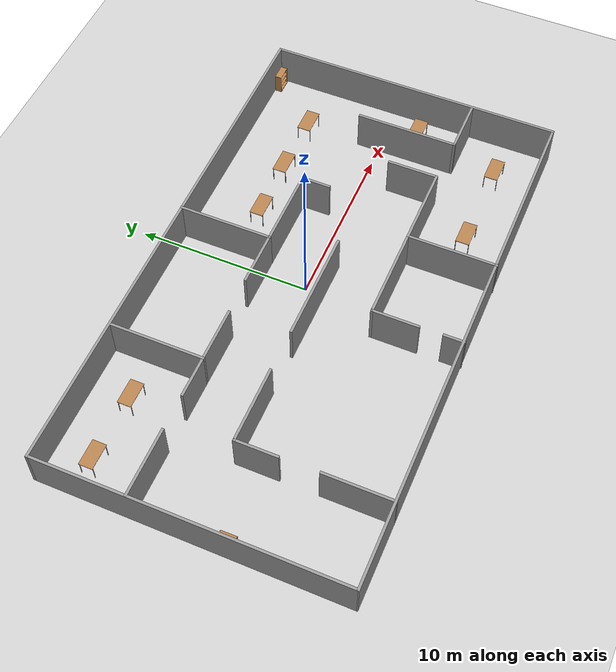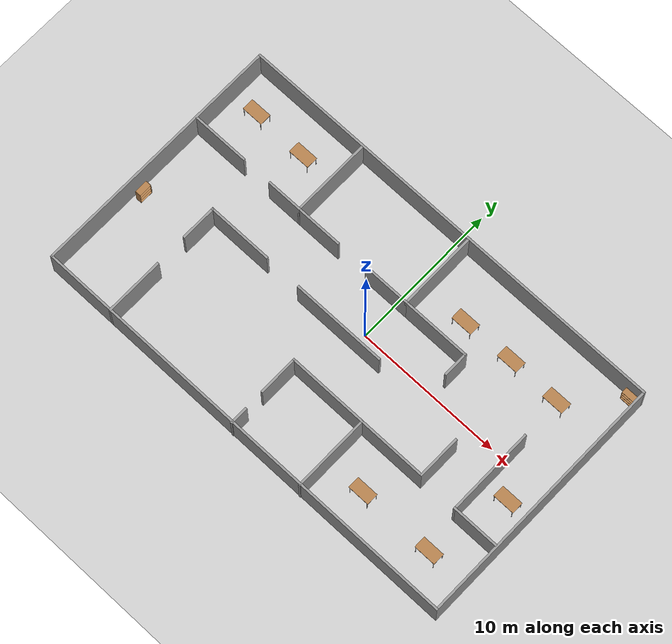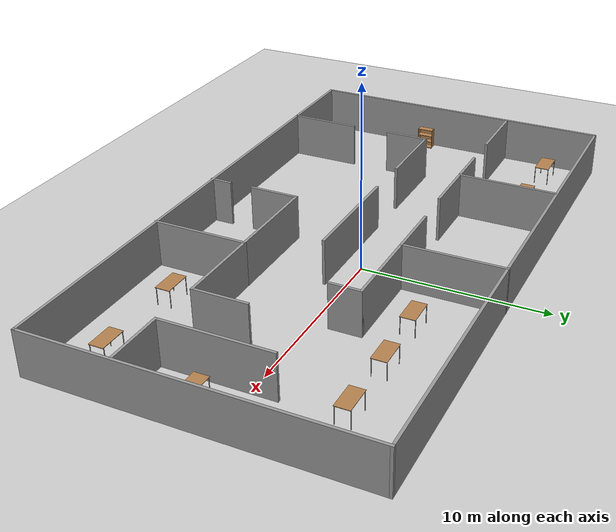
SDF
<sdf version="1.7">
 <world name="default">
  <light name="sun" type="directional">
   <pose>0 0 10 0 -0 0</pose>
   <diffuse>0.8 0.8 0.8 1</diffuse>
   <specular>0.2 0.2 0.2 1</specular>
   <attenuation>
    <range>1000</range>
    <constant>0.9</constant>
    <linear>0.01</linear>
    <quadratic>0.001</quadratic>
   </attenuation>
   <direction>-0.5 0.1 -0.9</direction>
   <spot><inner_angle>0</inner_angle><outer_angle>0</outer_angle><falloff>0</falloff></spot>
  </light>
  <model name="ground_plane">
   <static>1</static>
   <link name="link">
    <collision name="collision">
     <geometry><plane><normal>0 0 1</normal><size>100 100</size></plane></geometry>
     <surface><friction><ode><mu>100</mu><mu2>50</mu2></ode></friction></surface>
    </collision>
    <visual name="visual">
     <cast_shadows>0</cast_shadows>
     <geometry><plane><normal>0 0 1</normal><size>100 100</size></plane></geometry>
     <material>
      <script><uri>file://media/materials/scripts/gazebo.material</uri><name>Gazebo/Grey</name></script>
     </material>
    </visual>
   </link>
  </model>
  <gravity>0 0 -9.8</gravity>
  <magnetic_field>6e-06 2.3e-05 -4.2e-05</magnetic_field>
  <atmosphere type="adiabatic"/>
  <physics type="ode">
   <max_step_size>0.001</max_step_size>
   <real_time_factor>1</real_time_factor>
   <real_time_update_rate>1000</real_time_update_rate>
  </physics>
  <scene><ambient>0.4 0.4 0.4 1</ambient><background>0.7 0.7 0.7 1</background><shadows>1</shadows></scene>
  <audio><device>default</device></audio>
  <spherical_coordinates>
   <surface_model>EARTH_WGS84</surface_model>
   <latitude_deg>0</latitude_deg>
   <longitude_deg>0</longitude_deg>
   <elevation>0</elevation>
   <heading_deg>0</heading_deg>
  </spherical_coordinates>
  <model name="maze">
   <pose>-0.772899 -0.83508 0 0 -0 0</pose>
   <link name="Wall_13">
    <collision name="Wall_13_Collision">
     <geometry><box><size>30.5 0.15 2.5</size></box></geometry>
     <pose>0 0 1.25 0 -0 0</pose>
    </collision>
    <visual name="Wall_13_Visual">
     <pose>0 0 1.25 0 -0 0</pose>
     <geometry><box><size>30.5 0.15 2.5</size></box></geometry>
     <material>
      <script><uri>file://media/materials/scripts/gazebo.material</uri><name>Gazebo/Grey</name></script>
      <ambient>1 1 1 1</ambient>
     </material>
     <meta><layer>0</layer></meta>
    </visual>
    <pose>0 -8.65815 0 0 -0 3.14159</pose>
   </link>
   <link name="Wall_22">
    <collision name="Wall_22_Collision">
     <geometry><box><size>4 0.15 2.5</size></box></geometry>
     <pose>0 0 1.25 0 -0 0</pose>
    </collision>
    <visual name="Wall_22_Visual">
     <pose>0 0 1.25 0 -0 0</pose>
     <geometry><box><size>4 0.15 2.5</size></box></geometry>
     <material>
      <script><uri>file://media/materials/scripts/gazebo.material</uri><name>Gazebo/Grey</name></script>
      <ambient>1 1 1 1</ambient>
     </material>
     <meta><layer>0</layer></meta>
    </visual>
    <pose>-13.229 3.28702 0 0 -0 0</pose>
   </link>
   <link name="Wall_48">
    <collision name="Wall_48_Collision">
     <geometry><box><size>2.5 0.15 2.5</size></box></geometry>
     <pose>0 0 1.25 0 -0 0</pose>
    </collision>
    <visual name="Wall_48_Visual">
     <pose>0 0 1.25 0 -0 0</pose>
     <geometry><box><size>2.5 0.15 2.5</size></box></geometry>
     <material>
      <script><uri>file://media/materials/scripts/gazebo.material</uri><name>Gazebo/Grey</name></script>
      <ambient>1 1 1 1</ambient>
     </material>
     <meta><layer>0</layer></meta>
    </visual>
    <pose>-7.97039 3.27397 0 0 -0 0</pose>
   </link>
   <link name="Wall_49">
    <collision name="Wall_49_Collision">
     <geometry><box><size>5.5 0.15 2.5</size></box></geometry>
     <pose>0 0 1.25 0 -0 0</pose>
    </collision>
    <visual name="Wall_49_Visual">
     <pose>0 0 1.25 0 -0 0</pose>
     <geometry><box><size>5.5 0.15 2.5</size></box></geometry>
     <material>
      <script><uri>file://media/materials/scripts/gazebo.material</uri><name>Gazebo/Grey</name></script>
      <ambient>1 1 1 1</ambient>
     </material>
     <meta><layer>0</layer></meta>
    </visual>
    <pose>-6.79539 5.94897 0 0 -0 1.5708</pose>
   </link>
   <link name="Wall_51">
    <collision name="Wall_51_Collision">
     <geometry><box><size>3.25 0.15 2.5</size></box></geometry>
     <pose>0 0 1.25 0 -0 0</pose>
    </collision>
    <visual name="Wall_51_Visual">
     <pose>0 0 1.25 0 -0 0</pose>
     <geometry><box><size>3.25 0.15 2.5</size></box></geometry>
     <material>
      <script><uri>file://media/materials/scripts/gazebo.material</uri><name>Gazebo/Grey</name></script>
      <ambient>1 1 1 1</ambient>
     </material>
     <meta><layer>0</layer></meta>
    </visual>
    <pose>-5.2454 3.27397 0 0 -0 0</pose>
   </link>
   <link name="Wall_53">
    <collision name="Wall_53_Collision">
     <geometry><box><size>3.25 0.15 2.5</size></box></geometry>
     <pose>0 0 1.25 0 -0 0</pose>
    </collision>
    <visual name="Wall_53_Visual">
     <pose>0 0 1.25 0 -0 0</pose>
     <geometry><box><size>3.25 0.15 2.5</size></box></geometry>
     <material>
      <script><uri>file://media/materials/scripts/gazebo.material</uri><name>Gazebo/Grey</name></script>
      <ambient>1 1 1 1</ambient>
     </material>
     <meta><layer>0</layer></meta>
    </visual>
    <pose>0.092063 3.35377 0 0 -0 0</pose>
   </link>
   <link name="Wall_59">
    <collision name="Wall_59_Collision">
     <geometry><box><size>5.5 0.15 2.5</size></box></geometry>
     <pose>0 0 1.25 0 -0 0</pose>
    </collision>
    <visual name="Wall_59_Visual">
     <pose>0 0 1.25 0 -0 0</pose>
     <geometry><box><size>5.5 0.15 2.5</size></box></geometry>
     <material>
      <script><uri>file://media/materials/scripts/gazebo.material</uri><name>Gazebo/Grey</name></script>
      <ambient>1 1 1 1</ambient>
     </material>
     <meta><layer>0</layer></meta>
    </visual>
    <pose>1.64206 6.02877 0 0 -0 1.5708</pose>
   </link>
   <link name="Wall_6">
    <collision name="Wall_6_Collision">
     <geometry><box><size>17.5 0.15 2.5</size></box></geometry>
     <pose>0 0 1.25 0 -0 0</pose>
    </collision>
    <visual name="Wall_6_Visual">
     <pose>0 0 1.25 0 -0 0</pose>
     <geometry><box><size>17.5 0.15 2.5</size></box></geometry>
     <material>
      <script><uri>file://media/materials/scripts/gazebo.material</uri><name>Gazebo/Grey</name></script>
      <ambient>1 1 1 1</ambient>
     </material>
     <meta><layer>0</layer></meta>
    </visual>
    <pose>15.175 0.016851 0 0 -0 1.5708</pose>
   </link>
   <link name="Wall_61">
    <collision name="Wall_61_Collision">
     <geometry><box><size>3.25 0.15 2.5</size></box></geometry>
     <pose>0 0 1.25 0 -0 0</pose>
    </collision>
    <visual name="Wall_61_Visual">
     <pose>0 0 1.25 0 -0 0</pose>
     <geometry><box><size>3.25 0.15 2.5</size></box></geometry>
     <material>
      <script><uri>file://media/materials/scripts/gazebo.material</uri><name>Gazebo/Grey</name></script>
      <ambient>1 1 1 1</ambient>
     </material>
     <meta><layer>0</layer></meta>
    </visual>
    <pose>13.5256 -3.71427 0 0 -0 3.14159</pose>
   </link>
   <link name="Wall_63">
    <collision name="Wall_63_Collision">
     <geometry><box><size>4.75 0.15 2.5</size></box></geometry>
     <pose>0 0 1.25 0 -0 0</pose>
    </collision>
    <visual name="Wall_63_Visual">
     <pose>0 0 1.25 0 -0 0</pose>
     <geometry><box><size>4.75 0.15 2.5</size></box></geometry>
     <material>
      <script><uri>file://media/materials/scripts/gazebo.material</uri><name>Gazebo/Grey</name></script>
      <ambient>1 1 1 1</ambient>
     </material>
     <meta><layer>0</layer></meta>
    </visual>
    <pose>6.9904 -3.59291 0 0 -0 3.14159</pose>
   </link>
   <link name="Wall_68">
    <collision name="Wall_68_Collision">
     <geometry><box><size>5.25 0.15 2.5</size></box></geometry>
     <pose>0 0 1.25 0 -0 0</pose>
    </collision>
    <visual name="Wall_68_Visual">
     <pose>0 0 1.25 0 -0 0</pose>
     <geometry><box><size>5.25 0.15 2.5</size></box></geometry>
     <material>
      <script><uri>file://media/materials/scripts/gazebo.material</uri><name>Gazebo/Grey</name></script>
      <ambient>1 1 1 1</ambient>
     </material>
     <meta><layer>0</layer></meta>
    </visual>
    <pose>4.6904 -6.14291 0 0 -0 -1.5708</pose>
   </link>
   <link name="Wall_7">
    <collision name="Wall_7_Collision">
     <geometry><box><size>30.5 0.15 2.5</size></box></geometry>
     <pose>0 0 1.25 0 -0 0</pose>
    </collision>
    <visual name="Wall_7_Visual">
     <pose>0 0 1.25 0 -0 0</pose>
     <geometry><box><size>30.5 0.15 2.5</size></box></geometry>
     <material>
      <script><uri>file://media/materials/scripts/gazebo.material</uri><name>Gazebo/Grey</name></script>
      <ambient>1 1 1 1</ambient>
     </material>
     <meta><layer>0</layer></meta>
    </visual>
    <pose>0 8.69185 0 0 -0 3.14159</pose>
   </link>
   <link name="Wall_70">
    <collision name="Wall_70_Collision">
     <geometry><box><size>5.5 0.15 2.5</size></box></geometry>
     <pose>0 0 1.25 0 -0 0</pose>
    </collision>
    <visual name="Wall_70_Visual">
     <pose>0 0 1.25 0 -0 0</pose>
     <geometry><box><size>5.5 0.15 2.5</size></box></geometry>
     <material>
      <script><uri>file://media/materials/scripts/gazebo.material</uri><name>Gazebo/Grey</name></script>
      <ambient>1 1 1 1</ambient>
     </material>
     <meta><layer>0</layer></meta>
    </visual>
    <pose>2.0154 -3.59291 0 0 -0 3.14159</pose>
   </link>
   <link name="Wall_71">
    <collision name="Wall_71_Collision">
     <geometry><box><size>2.75 0.15 2.5</size></box></geometry>
     <pose>0 0 1.25 0 -0 0</pose>
    </collision>
    <visual name="Wall_71_Visual">
     <pose>0 0 1.25 0 -0 0</pose>
     <geometry><box><size>2.75 0.15 2.5</size></box></geometry>
     <material>
      <script><uri>file://media/materials/scripts/gazebo.material</uri><name>Gazebo/Grey</name></script>
      <ambient>1 1 1 1</ambient>
     </material>
     <meta><layer>0</layer></meta>
    </visual>
    <pose>-0.659598 -4.89291 0 0 -0 -1.5708</pose>
   </link>
   <link name="Wall_75">
    <collision name="Wall_75_Collision">
     <geometry><box><size>1.25 0.15 2.5</size></box></geometry>
     <pose>0 0 1.25 0 -0 0</pose>
    </collision>
    <visual name="Wall_75_Visual">
     <pose>0 0 1.25 0 -0 0</pose>
     <geometry><box><size>1.25 0.15 2.5</size></box></geometry>
     <material>
      <script><uri>file://media/materials/scripts/gazebo.material</uri><name>Gazebo/Grey</name></script>
      <ambient>1 1 1 1</ambient>
     </material>
     <meta><layer>0</layer></meta>
    </visual>
    <pose>-0.637959 -8.15377 0 0 -0 -1.5708</pose>
   </link>
   <link name="Wall_77">
    <collision name="Wall_77_Collision">
     <geometry><box><size>4 0.15 2.5</size></box></geometry>
     <pose>0 0 1.25 0 -0 0</pose>
    </collision>
    <visual name="Wall_77_Visual">
     <pose>0 0 1.25 0 -0 0</pose>
     <geometry><box><size>4 0.15 2.5</size></box></geometry>
     <material>
      <script><uri>file://media/materials/scripts/gazebo.material</uri><name>Gazebo/Grey</name></script>
      <ambient>1 1 1 1</ambient>
     </material>
     <meta><layer>0</layer></meta>
    </visual>
    <pose>-10.403 -6.73605 0 0 -0 1.5708</pose>
   </link>
   <link name="Wall_8">
    <collision name="Wall_8_Collision">
     <geometry><box><size>17.4296 0.15 2.5</size></box></geometry>
     <pose>0 0 1.25 0 -0 0</pose>
    </collision>
    <visual name="Wall_8_Visual">
     <pose>0 0 1.25 0 -0 0</pose>
     <geometry><box><size>17.4296 0.15 2.5</size></box></geometry>
     <material>
      <script><uri>file://media/materials/scripts/gazebo.material</uri><name>Gazebo/Grey</name></script>
      <ambient>1 1 1 1</ambient>
     </material>
     <meta><layer>0</layer></meta>
    </visual>
    <pose>-15.175 0.05203 0 0 -0 -1.5708</pose>
   </link>
   <link name="Wall_81">
    <collision name="Wall_81_Collision">
     <geometry><box><size>2.5 0.15 2.5</size></box></geometry>
     <pose>0 0 1.25 0 -0 0</pose>
    </collision>
    <visual name="Wall_81_Visual">
     <pose>0 0 1.25 0 -0 0</pose>
     <geometry><box><size>2.5 0.15 2.5</size></box></geometry>
     <material>
      <script><uri>file://media/materials/scripts/gazebo.material</uri><name>Gazebo/Grey</name></script>
      <ambient>1 1 1 1</ambient>
     </material>
     <meta><layer>0</layer></meta>
    </visual>
    <pose>-10.4382 -1.36495 0 0 -0 1.5708</pose>
   </link>
   <link name="Wall_82">
    <collision name="Wall_82_Collision">
     <geometry><box><size>4.5 0.15 2.5</size></box></geometry>
     <pose>0 0 1.25 0 -0 0</pose>
    </collision>
    <visual name="Wall_82_Visual">
     <pose>0 0 1.25 0 -0 0</pose>
     <geometry><box><size>4.5 0.15 2.5</size></box></geometry>
     <material>
      <script><uri>file://media/materials/scripts/gazebo.material</uri><name>Gazebo/Grey</name></script>
      <ambient>1 1 1 1</ambient>
     </material>
     <meta><layer>0</layer></meta>
    </visual>
    <pose>-8.2632 -0.189948 0 0 -0 0</pose>
   </link>
   <link name="Wall_84">
    <collision name="Wall_84_Collision">
     <geometry><box><size>6.5 0.15 2.5</size></box></geometry>
     <pose>0 0 1.25 0 -0 0</pose>
    </collision>
    <visual name="Wall_84_Visual">
     <pose>0 0 1.25 0 -0 0</pose>
     <geometry><box><size>6.5 0.15 2.5</size></box></geometry>
     <material>
      <script><uri>file://media/materials/scripts/gazebo.material</uri><name>Gazebo/Grey</name></script>
      <ambient>1 1 1 1</ambient>
     </material>
     <meta><layer>0</layer></meta>
    </visual>
    <pose>-0.332988 -0.218149 0 0 -0 0</pose>
   </link>
   <link name="Wall_86">
    <collision name="Wall_86_Collision">
     <geometry><box><size>4.75 0.15 2.5</size></box></geometry>
     <pose>0 0 1.25 0 -0 0</pose>
    </collision>
    <visual name="Wall_86_Visual">
     <pose>0 0 1.25 0 -0 0</pose>
     <geometry><box><size>4.75 0.15 2.5</size></box></geometry>
     <material>
      <script><uri>file://media/materials/scripts/gazebo.material</uri><name>Gazebo/Grey</name></script>
      <ambient>1 1 1 1</ambient>
     </material>
     <meta><layer>0</layer></meta>
    </visual>
    <pose>3.94206 3.35377 0 0 -0 0</pose>
   </link>
   <link name="Wall_88">
    <collision name="Wall_88_Collision">
     <geometry><box><size>1.75 0.15 2.5</size></box></geometry>
     <pose>0 0 1.25 0 -0 0</pose>
    </collision>
    <visual name="Wall_88_Visual">
     <pose>0 0 1.25 0 -0 0</pose>
     <geometry><box><size>1.75 0.15 2.5</size></box></geometry>
     <material>
      <script><uri>file://media/materials/scripts/gazebo.material</uri><name>Gazebo/Grey</name></script>
      <ambient>1 1 1 1</ambient>
     </material>
     <meta><layer>0</layer></meta>
    </visual>
    <pose>6.24206 2.55377 0 0 -0 -1.5708</pose>
   </link>
   <link name="Wall_90">
    <collision name="Wall_90_Collision">
     <geometry><box><size>6 0.15 2.5</size></box></geometry>
     <pose>0 0 1.25 0 -0 0</pose>
    </collision>
    <visual name="Wall_90_Visual">
     <pose>0 0 1.25 0 -0 0</pose>
     <geometry><box><size>6 0.15 2.5</size></box></geometry>
     <material>
      <script><uri>file://media/materials/scripts/gazebo.material</uri><name>Gazebo/Grey</name></script>
      <ambient>1 1 1 1</ambient>
     </material>
     <meta><layer>0</layer></meta>
    </visual>
    <pose>11.9756 -0.789274 0 0 -0 1.5708</pose>
   </link>
   <link name="Wall_92">
    <collision name="Wall_92_Collision">
     <geometry><box><size>3 0.15 2.5</size></box></geometry>
     <pose>0 0 1.25 0 -0 0</pose>
    </collision>
    <visual name="Wall_92_Visual">
     <pose>0 0 1.25 0 -0 0</pose>
     <geometry><box><size>3 0.15 2.5</size></box></geometry>
     <material>
      <script><uri>file://media/materials/scripts/gazebo.material</uri><name>Gazebo/Grey</name></script>
      <ambient>1 1 1 1</ambient>
     </material>
     <meta><layer>0</layer></meta>
    </visual>
    <pose>9.2904 -2.16791 0 0 -0 1.5708</pose>
   </link>
   <static>1</static>
  </model>
  <model name="bookshelf">
   <static>1</static>
   <link name="link">
    <inertial><mass>1</mass></inertial>
    <collision name="back">
     <pose>0 0.005 0.6 0 -0 0</pose>
     <geometry><box><size>0.9 0.01 1.2</size></box></geometry>
    </collision>
    <visual name="visual1">
     <pose>0 0.005 0.6 0 -0 0</pose>
     <geometry><box><size>0.9 0.01 1.2</size></box></geometry>
     <material>
      <script><uri>file://media/materials/scripts/gazebo.material</uri><name>Gazebo/Wood</name></script>
     </material>
    </visual>
    <collision name="left_side">
     <pose>0.45 -0.195 0.6 0 -0 0</pose>
     <geometry><box><size>0.02 0.4 1.2</size></box></geometry>
    </collision>
    <visual name="visual2">
     <pose>0.45 -0.195 0.6 0 -0 0</pose>
     <geometry><box><size>0.02 0.4 1.2</size></box></geometry>
     <material>
      <script><uri>file://media/materials/scripts/gazebo.material</uri><name>Gazebo/Wood</name></script>
     </material>
    </visual>
    <collision name="right_side">
     <pose>-0.45 -0.195 0.6 0 -0 0</pose>
     <geometry><box><size>0.02 0.4 1.2</size></box></geometry>
    </collision>
    <visual name="visual3">
     <pose>-0.45 -0.195 0.6 0 -0 0</pose>
     <geometry><box><size>0.02 0.4 1.2</size></box></geometry>
     <material>
      <script><uri>file://media/materials/scripts/gazebo.material</uri><name>Gazebo/Wood</name></script>
     </material>
    </visual>
    <collision name="bottom">
     <pose>0 -0.195 0.03 0 -0 0</pose>
     <geometry><box><size>0.88 0.4 0.06</size></box></geometry>
    </collision>
    <visual name="visual4">
     <pose>0 -0.195 0.03 0 -0 0</pose>
     <geometry><box><size>0.88 0.4 0.06</size></box></geometry>
     <material>
      <script><uri>file://media/materials/scripts/gazebo.material</uri><name>Gazebo/Wood</name></script>
     </material>
    </visual>
    <collision name="top">
     <pose>0 -0.195 1.19 0 -0 0</pose>
     <geometry><box><size>0.88 0.4 0.02</size></box></geometry>
    </collision>
    <visual name="visual5">
     <pose>0 -0.195 1.19 0 -0 0</pose>
     <geometry><box><size>0.88 0.4 0.02</size></box></geometry>
     <material>
      <script><uri>file://media/materials/scripts/gazebo.material</uri><name>Gazebo/Wood</name></script>
     </material>
    </visual>
    <collision name="low_shelf">
     <pose>0 -0.195 0.43 0 -0 0</pose>
     <geometry><box><size>0.88 0.4 0.02</size></box></geometry>
    </collision>
    <visual name="visual6">
     <pose>0 -0.195 0.43 0 -0 0</pose>
     <geometry><box><size>0.88 0.4 0.02</size></box></geometry>
     <material>
      <script><uri>file://media/materials/scripts/gazebo.material</uri><name>Gazebo/Wood</name></script>
     </material>
    </visual>
    <collision name="high_shelf">
     <pose>0 -0.195 0.8 0 -0 0</pose>
     <geometry><box><size>0.88 0.4 0.02</size></box></geometry>
    </collision>
    <visual name="visual7">
     <pose>0 -0.195 0.8 0 -0 0</pose>
     <geometry><box><size>0.88 0.4 0.02</size></box></geometry>
     <material>
      <script><uri>file://media/materials/scripts/gazebo.material</uri><name>Gazebo/Wood</name></script>
     </material>
    </visual>
   </link>
   <pose>-15.6548 -2.59773 0 0 -0 1.57883</pose>
  </model>
  <model name="table">
   <static>1</static>
   <link name="link">
    <collision name="surface">
     <pose>0 0 1 0 -0 0</pose>
     <geometry><box><size>1.5 0.8 0.03</size></box></geometry>
     <surface><friction><ode><mu>0.6</mu><mu2>0.6</mu2></ode></friction></surface>
    </collision>
    <visual name="visual1">
     <pose>0 0 1 0 -0 0</pose>
     <geometry><box><size>1.5 0.8 0.03</size></box></geometry>
     <material>
      <script><uri>file://media/materials/scripts/gazebo.material</uri><name>Gazebo/Wood</name></script>
     </material>
    </visual>
    <collision name="front_left_leg">
     <pose>0.68 0.38 0.5 0 -0 0</pose>
     <geometry><cylinder><radius>0.02</radius><length>1</length></cylinder></geometry>
    </collision>
    <visual name="front_left_leg">
     <pose>0.68 0.38 0.5 0 -0 0</pose>
     <geometry><cylinder><radius>0.02</radius><length>1</length></cylinder></geometry>
     <material>
      <script><uri>file://media/materials/scripts/gazebo.material</uri><name>Gazebo/Grey</name></script>
     </material>
    </visual>
    <collision name="front_right_leg">
     <pose>0.68 -0.38 0.5 0 -0 0</pose>
     <geometry><cylinder><radius>0.02</radius><length>1</length></cylinder></geometry>
    </collision>
    <visual name="front_right_leg">
     <pose>0.68 -0.38 0.5 0 -0 0</pose>
     <geometry><cylinder><radius>0.02</radius><length>1</length></cylinder></geometry>
     <material>
      <script><uri>file://media/materials/scripts/gazebo.material</uri><name>Gazebo/Grey</name></script>
     </material>
    </visual>
    <collision name="back_right_leg">
     <pose>-0.68 -0.38 0.5 0 -0 0</pose>
     <geometry><cylinder><radius>0.02</radius><length>1</length></cylinder></geometry>
    </collision>
    <visual name="back_right_leg">
     <pose>-0.68 -0.38 0.5 0 -0 0</pose>
     <geometry><cylinder><radius>0.02</radius><length>1</length></cylinder></geometry>
     <material>
      <script><uri>file://media/materials/scripts/gazebo.material</uri><name>Gazebo/Grey</name></script>
     </material>
    </visual>
    <collision name="back_left_leg">
     <pose>-0.68 0.38 0.5 0 -0 0</pose>
     <geometry><cylinder><radius>0.02</radius><length>1</length></cylinder></geometry>
    </collision>
    <visual name="back_left_leg">
     <pose>-0.68 0.38 0.5 0 -0 0</pose>
     <geometry><cylinder><radius>0.02</radius><length>1</length></cylinder></geometry>
     <material>
      <script><uri>file://media/materials/scripts/gazebo.material</uri><name>Gazebo/Grey</name></script>
     </material>
    </visual>
   </link>
   <pose>-14.0348 5.52593 0 0 -0 0</pose>
  </model>
  <model name="table_0">
   <static>1</static>
   <link name="link">
    <collision name="surface">
     <pose>0 0 1 0 -0 0</pose>
     <geometry><box><size>1.5 0.8 0.03</size></box></geometry>
     <surface><friction><ode><mu>0.6</mu><mu2>0.6</mu2></ode></friction></surface>
    </collision>
    <visual name="visual1">
     <pose>0 0 1 0 -0 0</pose>
     <geometry><box><size>1.5 0.8 0.03</size></box></geometry>
     <material>
      <script><uri>file://media/materials/scripts/gazebo.material</uri><name>Gazebo/Wood</name></script>
     </material>
    </visual>
    <collision name="front_left_leg">
     <pose>0.68 0.38 0.5 0 -0 0</pose>
     <geometry><cylinder><radius>0.02</radius><length>1</length></cylinder></geometry>
    </collision>
    <visual name="front_left_leg">
     <pose>0.68 0.38 0.5 0 -0 0</pose>
     <geometry><cylinder><radius>0.02</radius><length>1</length></cylinder></geometry>
     <material>
      <script><uri>file://media/materials/scripts/gazebo.material</uri><name>Gazebo/Grey</name></script>
     </material>
    </visual>
    <collision name="front_right_leg">
     <pose>0.68 -0.38 0.5 0 -0 0</pose>
     <geometry><cylinder><radius>0.02</radius><length>1</length></cylinder></geometry>
    </collision>
    <visual name="front_right_leg">
     <pose>0.68 -0.38 0.5 0 -0 0</pose>
     <geometry><cylinder><radius>0.02</radius><length>1</length></cylinder></geometry>
     <material>
      <script><uri>file://media/materials/scripts/gazebo.material</uri><name>Gazebo/Grey</name></script>
     </material>
    </visual>
    <collision name="back_right_leg">
     <pose>-0.68 -0.38 0.5 0 -0 0</pose>
     <geometry><cylinder><radius>0.02</radius><length>1</length></cylinder></geometry>
    </collision>
    <visual name="back_right_leg">
     <pose>-0.68 -0.38 0.5 0 -0 0</pose>
     <geometry><cylinder><radius>0.02</radius><length>1</length></cylinder></geometry>
     <material>
      <script><uri>file://media/materials/scripts/gazebo.material</uri><name>Gazebo/Grey</name></script>
     </material>
    </visual>
    <collision name="back_left_leg">
     <pose>-0.68 0.38 0.5 0 -0 0</pose>
     <geometry><cylinder><radius>0.02</radius><length>1</length></cylinder></geometry>
    </collision>
    <visual name="back_left_leg">
     <pose>-0.68 0.38 0.5 0 -0 0</pose>
     <geometry><cylinder><radius>0.02</radius><length>1</length></cylinder></geometry>
     <material>
      <script><uri>file://media/materials/scripts/gazebo.material</uri><name>Gazebo/Grey</name></script>
     </material>
    </visual>
   </link>
   <pose>-10.1449 5.43748 0 0 -0 0</pose>
  </model>
  <model name="bookshelf_0">
   <static>1</static>
   <link name="link">
    <inertial><mass>1</mass></inertial>
    <collision name="back">
     <pose>0 0.005 0.6 0 -0 0</pose>
     <geometry><box><size>0.9 0.01 1.2</size></box></geometry>
    </collision>
    <visual name="visual1">
     <pose>0 0.005 0.6 0 -0 0</pose>
     <geometry><box><size>0.9 0.01 1.2</size></box></geometry>
     <material>
      <script><uri>file://media/materials/scripts/gazebo.material</uri><name>Gazebo/Wood</name></script>
     </material>
    </visual>
    <collision name="left_side">
     <pose>0.45 -0.195 0.6 0 -0 0</pose>
     <geometry><box><size>0.02 0.4 1.2</size></box></geometry>
    </collision>
    <visual name="visual2">
     <pose>0.45 -0.195 0.6 0 -0 0</pose>
     <geometry><box><size>0.02 0.4 1.2</size></box></geometry>
     <material>
      <script><uri>file://media/materials/scripts/gazebo.material</uri><name>Gazebo/Wood</name></script>
     </material>
    </visual>
    <collision name="right_side">
     <pose>-0.45 -0.195 0.6 0 -0 0</pose>
     <geometry><box><size>0.02 0.4 1.2</size></box></geometry>
    </collision>
    <visual name="visual3">
     <pose>-0.45 -0.195 0.6 0 -0 0</pose>
     <geometry><box><size>0.02 0.4 1.2</size></box></geometry>
     <material>
      <script><uri>file://media/materials/scripts/gazebo.material</uri><name>Gazebo/Wood</name></script>
     </material>
    </visual>
    <collision name="bottom">
     <pose>0 -0.195 0.03 0 -0 0</pose>
     <geometry><box><size>0.88 0.4 0.06</size></box></geometry>
    </collision>
    <visual name="visual4">
     <pose>0 -0.195 0.03 0 -0 0</pose>
     <geometry><box><size>0.88 0.4 0.06</size></box></geometry>
     <material>
      <script><uri>file://media/materials/scripts/gazebo.material</uri><name>Gazebo/Wood</name></script>
     </material>
    </visual>
    <collision name="top">
     <pose>0 -0.195 1.19 0 -0 0</pose>
     <geometry><box><size>0.88 0.4 0.02</size></box></geometry>
    </collision>
    <visual name="visual5">
     <pose>0 -0.195 1.19 0 -0 0</pose>
     <geometry><box><size>0.88 0.4 0.02</size></box></geometry>
     <material>
      <script><uri>file://media/materials/scripts/gazebo.material</uri><name>Gazebo/Wood</name></script>
     </material>
    </visual>
    <collision name="low_shelf">
     <pose>0 -0.195 0.43 0 -0 0</pose>
     <geometry><box><size>0.88 0.4 0.02</size></box></geometry>
    </collision>
    <visual name="visual6">
     <pose>0 -0.195 0.43 0 -0 0</pose>
     <geometry><box><size>0.88 0.4 0.02</size></box></geometry>
     <material>
      <script><uri>file://media/materials/scripts/gazebo.material</uri><name>Gazebo/Wood</name></script>
     </material>
    </visual>
    <collision name="high_shelf">
     <pose>0 -0.195 0.8 0 -0 0</pose>
     <geometry><box><size>0.88 0.4 0.02</size></box></geometry>
    </collision>
    <visual name="visual7">
     <pose>0 -0.195 0.8 0 -0 0</pose>
     <geometry><box><size>0.88 0.4 0.02</size></box></geometry>
     <material>
      <script><uri>file://media/materials/scripts/gazebo.material</uri><name>Gazebo/Wood</name></script>
     </material>
    </visual>
   </link>
   <pose>13.7618 7.75473 0 0 -0 0</pose>
  </model>
  <model name="table_1">
   <static>1</static>
   <link name="link">
    <collision name="surface">
     <pose>0 0 1 0 -0 0</pose>
     <geometry><box><size>1.5 0.8 0.03</size></box></geometry>
     <surface><friction><ode><mu>0.6</mu><mu2>0.6</mu2></ode></friction></surface>
    </collision>
    <visual name="visual1">
     <pose>0 0 1 0 -0 0</pose>
     <geometry><box><size>1.5 0.8 0.03</size></box></geometry>
     <material>
      <script><uri>file://media/materials/scripts/gazebo.material</uri><name>Gazebo/Wood</name></script>
     </material>
    </visual>
    <collision name="front_left_leg">
     <pose>0.68 0.38 0.5 0 -0 0</pose>
     <geometry><cylinder><radius>0.02</radius><length>1</length></cylinder></geometry>
    </collision>
    <visual name="front_left_leg">
     <pose>0.68 0.38 0.5 0 -0 0</pose>
     <geometry><cylinder><radius>0.02</radius><length>1</length></cylinder></geometry>
     <material>
      <script><uri>file://media/materials/scripts/gazebo.material</uri><name>Gazebo/Grey</name></script>
     </material>
    </visual>
    <collision name="front_right_leg">
     <pose>0.68 -0.38 0.5 0 -0 0</pose>
     <geometry><cylinder><radius>0.02</radius><length>1</length></cylinder></geometry>
    </collision>
    <visual name="front_right_leg">
     <pose>0.68 -0.38 0.5 0 -0 0</pose>
     <geometry><cylinder><radius>0.02</radius><length>1</length></cylinder></geometry>
     <material>
      <script><uri>file://media/materials/scripts/gazebo.material</uri><name>Gazebo/Grey</name></script>
     </material>
    </visual>
    <collision name="back_right_leg">
     <pose>-0.68 -0.38 0.5 0 -0 0</pose>
     <geometry><cylinder><radius>0.02</radius><length>1</length></cylinder></geometry>
    </collision>
    <visual name="back_right_leg">
     <pose>-0.68 -0.38 0.5 0 -0 0</pose>
     <geometry><cylinder><radius>0.02</radius><length>1</length></cylinder></geometry>
     <material>
      <script><uri>file://media/materials/scripts/gazebo.material</uri><name>Gazebo/Grey</name></script>
     </material>
    </visual>
    <collision name="back_left_leg">
     <pose>-0.68 0.38 0.5 0 -0 0</pose>
     <geometry><cylinder><radius>0.02</radius><length>1</length></cylinder></geometry>
    </collision>
    <visual name="back_left_leg">
     <pose>-0.68 0.38 0.5 0 -0 0</pose>
     <geometry><cylinder><radius>0.02</radius><length>1</length></cylinder></geometry>
     <material>
      <script><uri>file://media/materials/scripts/gazebo.material</uri><name>Gazebo/Grey</name></script>
     </material>
    </visual>
   </link>
   <pose>10.8799 4.48725 0 0 -0 0</pose>
  </model>
  <model name="table_2">
   <static>1</static>
   <link name="link">
    <collision name="surface">
     <pose>0 0 1 0 -0 0</pose>
     <geometry><box><size>1.5 0.8 0.03</size></box></geometry>
     <surface><friction><ode><mu>0.6</mu><mu2>0.6</mu2></ode></friction></surface>
    </collision>
    <visual name="visual1">
     <pose>0 0 1 0 -0 0</pose>
     <geometry><box><size>1.5 0.8 0.03</size></box></geometry>
     <material>
      <script><uri>file://media/materials/scripts/gazebo.material</uri><name>Gazebo/Wood</name></script>
     </material>
    </visual>
    <collision name="front_left_leg">
     <pose>0.68 0.38 0.5 0 -0 0</pose>
     <geometry><cylinder><radius>0.02</radius><length>1</length></cylinder></geometry>
    </collision>
    <visual name="front_left_leg">
     <pose>0.68 0.38 0.5 0 -0 0</pose>
     <geometry><cylinder><radius>0.02</radius><length>1</length></cylinder></geometry>
     <material>
      <script><uri>file://media/materials/scripts/gazebo.material</uri><name>Gazebo/Grey</name></script>
     </material>
    </visual>
    <collision name="front_right_leg">
     <pose>0.68 -0.38 0.5 0 -0 0</pose>
     <geometry><cylinder><radius>0.02</radius><length>1</length></cylinder></geometry>
    </collision>
    <visual name="front_right_leg">
     <pose>0.68 -0.38 0.5 0 -0 0</pose>
     <geometry><cylinder><radius>0.02</radius><length>1</length></cylinder></geometry>
     <material>
      <script><uri>file://media/materials/scripts/gazebo.material</uri><name>Gazebo/Grey</name></script>
     </material>
    </visual>
    <collision name="back_right_leg">
     <pose>-0.68 -0.38 0.5 0 -0 0</pose>
     <geometry><cylinder><radius>0.02</radius><length>1</length></cylinder></geometry>
    </collision>
    <visual name="back_right_leg">
     <pose>-0.68 -0.38 0.5 0 -0 0</pose>
     <geometry><cylinder><radius>0.02</radius><length>1</length></cylinder></geometry>
     <material>
      <script><uri>file://media/materials/scripts/gazebo.material</uri><name>Gazebo/Grey</name></script>
     </material>
    </visual>
    <collision name="back_left_leg">
     <pose>-0.68 0.38 0.5 0 -0 0</pose>
     <geometry><cylinder><radius>0.02</radius><length>1</length></cylinder></geometry>
    </collision>
    <visual name="back_left_leg">
     <pose>-0.68 0.38 0.5 0 -0 0</pose>
     <geometry><cylinder><radius>0.02</radius><length>1</length></cylinder></geometry>
     <material>
      <script><uri>file://media/materials/scripts/gazebo.material</uri><name>Gazebo/Grey</name></script>
     </material>
    </visual>
   </link>
   <pose>7.31936 4.51639 0 0 -0 0</pose>
  </model>
  <model name="table_3">
   <static>1</static>
   <link name="link">
    <collision name="surface">
     <pose>0 0 1 0 -0 0</pose>
     <geometry><box><size>1.5 0.8 0.03</size></box></geometry>
     <surface><friction><ode><mu>0.6</mu><mu2>0.6</mu2></ode></friction></surface>
    </collision>
    <visual name="visual1">
     <pose>0 0 1 0 -0 0</pose>
     <geometry><box><size>1.5 0.8 0.03</size></box></geometry>
     <material>
      <script><uri>file://media/materials/scripts/gazebo.material</uri><name>Gazebo/Wood</name></script>
     </material>
    </visual>
    <collision name="front_left_leg">
     <pose>0.68 0.38 0.5 0 -0 0</pose>
     <geometry><cylinder><radius>0.02</radius><length>1</length></cylinder></geometry>
    </collision>
    <visual name="front_left_leg">
     <pose>0.68 0.38 0.5 0 -0 0</pose>
     <geometry><cylinder><radius>0.02</radius><length>1</length></cylinder></geometry>
     <material>
      <script><uri>file://media/materials/scripts/gazebo.material</uri><name>Gazebo/Grey</name></script>
     </material>
    </visual>
    <collision name="front_right_leg">
     <pose>0.68 -0.38 0.5 0 -0 0</pose>
     <geometry><cylinder><radius>0.02</radius><length>1</length></cylinder></geometry>
    </collision>
    <visual name="front_right_leg">
     <pose>0.68 -0.38 0.5 0 -0 0</pose>
     <geometry><cylinder><radius>0.02</radius><length>1</length></cylinder></geometry>
     <material>
      <script><uri>file://media/materials/scripts/gazebo.material</uri><name>Gazebo/Grey</name></script>
     </material>
    </visual>
    <collision name="back_right_leg">
     <pose>-0.68 -0.38 0.5 0 -0 0</pose>
     <geometry><cylinder><radius>0.02</radius><length>1</length></cylinder></geometry>
    </collision>
    <visual name="back_right_leg">
     <pose>-0.68 -0.38 0.5 0 -0 0</pose>
     <geometry><cylinder><radius>0.02</radius><length>1</length></cylinder></geometry>
     <material>
      <script><uri>file://media/materials/scripts/gazebo.material</uri><name>Gazebo/Grey</name></script>
     </material>
    </visual>
    <collision name="back_left_leg">
     <pose>-0.68 0.38 0.5 0 -0 0</pose>
     <geometry><cylinder><radius>0.02</radius><length>1</length></cylinder></geometry>
    </collision>
    <visual name="back_left_leg">
     <pose>-0.68 0.38 0.5 0 -0 0</pose>
     <geometry><cylinder><radius>0.02</radius><length>1</length></cylinder></geometry>
     <material>
      <script><uri>file://media/materials/scripts/gazebo.material</uri><name>Gazebo/Grey</name></script>
     </material>
    </visual>
   </link>
   <pose>3.85576 4.40821 0 0 -0 0</pose>
  </model>
  <model name="table_4">
   <static>1</static>
   <link name="link">
    <collision name="surface">
     <pose>0 0 1 0 -0 0</pose>
     <geometry><box><size>1.5 0.8 0.03</size></box></geometry>
     <surface><friction><ode><mu>0.6</mu><mu2>0.6</mu2></ode></friction></surface>
    </collision>
    <visual name="visual1">
     <pose>0 0 1 0 -0 0</pose>
     <geometry><box><size>1.5 0.8 0.03</size></box></geometry>
     <material>
      <script><uri>file://media/materials/scripts/gazebo.material</uri><name>Gazebo/Wood</name></script>
     </material>
    </visual>
    <collision name="front_left_leg">
     <pose>0.68 0.38 0.5 0 -0 0</pose>
     <geometry><cylinder><radius>0.02</radius><length>1</length></cylinder></geometry>
    </collision>
    <visual name="front_left_leg">
     <pose>0.68 0.38 0.5 0 -0 0</pose>
     <geometry><cylinder><radius>0.02</radius><length>1</length></cylinder></geometry>
     <material>
      <script><uri>file://media/materials/scripts/gazebo.material</uri><name>Gazebo/Grey</name></script>
     </material>
    </visual>
    <collision name="front_right_leg">
     <pose>0.68 -0.38 0.5 0 -0 0</pose>
     <geometry><cylinder><radius>0.02</radius><length>1</length></cylinder></geometry>
    </collision>
    <visual name="front_right_leg">
     <pose>0.68 -0.38 0.5 0 -0 0</pose>
     <geometry><cylinder><radius>0.02</radius><length>1</length></cylinder></geometry>
     <material>
      <script><uri>file://media/materials/scripts/gazebo.material</uri><name>Gazebo/Grey</name></script>
     </material>
    </visual>
    <collision name="back_right_leg">
     <pose>-0.68 -0.38 0.5 0 -0 0</pose>
     <geometry><cylinder><radius>0.02</radius><length>1</length></cylinder></geometry>
    </collision>
    <visual name="back_right_leg">
     <pose>-0.68 -0.38 0.5 0 -0 0</pose>
     <geometry><cylinder><radius>0.02</radius><length>1</length></cylinder></geometry>
     <material>
      <script><uri>file://media/materials/scripts/gazebo.material</uri><name>Gazebo/Grey</name></script>
     </material>
    </visual>
    <collision name="back_left_leg">
     <pose>-0.68 0.38 0.5 0 -0 0</pose>
     <geometry><cylinder><radius>0.02</radius><length>1</length></cylinder></geometry>
    </collision>
    <visual name="back_left_leg">
     <pose>-0.68 0.38 0.5 0 -0 0</pose>
     <geometry><cylinder><radius>0.02</radius><length>1</length></cylinder></geometry>
     <material>
      <script><uri>file://media/materials/scripts/gazebo.material</uri><name>Gazebo/Grey</name></script>
     </material>
    </visual>
   </link>
   <pose>12.8211 -1.78619 0 0 -0 0</pose>
  </model>
  <model name="table_5">
   <static>1</static>
   <link name="link">
    <collision name="surface">
     <pose>0 0 1 0 -0 0</pose>
     <geometry><box><size>1.5 0.8 0.03</size></box></geometry>
     <surface><friction><ode><mu>0.6</mu><mu2>0.6</mu2></ode></friction></surface>
    </collision>
    <visual name="visual1">
     <pose>0 0 1 0 -0 0</pose>
     <geometry><box><size>1.5 0.8 0.03</size></box></geometry>
     <material>
      <script><uri>file://media/materials/scripts/gazebo.material</uri><name>Gazebo/Wood</name></script>
     </material>
    </visual>
    <collision name="front_left_leg">
     <pose>0.68 0.38 0.5 0 -0 0</pose>
     <geometry><cylinder><radius>0.02</radius><length>1</length></cylinder></geometry>
    </collision>
    <visual name="front_left_leg">
     <pose>0.68 0.38 0.5 0 -0 0</pose>
     <geometry><cylinder><radius>0.02</radius><length>1</length></cylinder></geometry>
     <material>
      <script><uri>file://media/materials/scripts/gazebo.material</uri><name>Gazebo/Grey</name></script>
     </material>
    </visual>
    <collision name="front_right_leg">
     <pose>0.68 -0.38 0.5 0 -0 0</pose>
     <geometry><cylinder><radius>0.02</radius><length>1</length></cylinder></geometry>
    </collision>
    <visual name="front_right_leg">
     <pose>0.68 -0.38 0.5 0 -0 0</pose>
     <geometry><cylinder><radius>0.02</radius><length>1</length></cylinder></geometry>
     <material>
      <script><uri>file://media/materials/scripts/gazebo.material</uri><name>Gazebo/Grey</name></script>
     </material>
    </visual>
    <collision name="back_right_leg">
     <pose>-0.68 -0.38 0.5 0 -0 0</pose>
     <geometry><cylinder><radius>0.02</radius><length>1</length></cylinder></geometry>
    </collision>
    <visual name="back_right_leg">
     <pose>-0.68 -0.38 0.5 0 -0 0</pose>
     <geometry><cylinder><radius>0.02</radius><length>1</length></cylinder></geometry>
     <material>
      <script><uri>file://media/materials/scripts/gazebo.material</uri><name>Gazebo/Grey</name></script>
     </material>
    </visual>
    <collision name="back_left_leg">
     <pose>-0.68 0.38 0.5 0 -0 0</pose>
     <geometry><cylinder><radius>0.02</radius><length>1</length></cylinder></geometry>
    </collision>
    <visual name="back_left_leg">
     <pose>-0.68 0.38 0.5 0 -0 0</pose>
     <geometry><cylinder><radius>0.02</radius><length>1</length></cylinder></geometry>
     <material>
      <script><uri>file://media/materials/scripts/gazebo.material</uri><name>Gazebo/Grey</name></script>
     </material>
    </visual>
   </link>
   <pose>11.5996 -7.04176 0 0 -0 0</pose>
  </model>
  <model name="table_6">
   <static>1</static>
   <link name="link">
    <collision name="surface">
     <pose>0 0 1 0 -0 0</pose>
     <geometry><box><size>1.5 0.8 0.03</size></box></geometry>
     <surface><friction><ode><mu>0.6</mu><mu2>0.6</mu2></ode></friction></surface>
    </collision>
    <visual name="visual1">
     <pose>0 0 1 0 -0 0</pose>
     <geometry><box><size>1.5 0.8 0.03</size></box></geometry>
     <material>
      <script><uri>file://media/materials/scripts/gazebo.material</uri><name>Gazebo/Wood</name></script>
     </material>
    </visual>
    <collision name="front_left_leg">
     <pose>0.68 0.38 0.5 0 -0 0</pose>
     <geometry><cylinder><radius>0.02</radius><length>1</length></cylinder></geometry>
    </collision>
    <visual name="front_left_leg">
     <pose>0.68 0.38 0.5 0 -0 0</pose>
     <geometry><cylinder><radius>0.02</radius><length>1</length></cylinder></geometry>
     <material>
      <script><uri>file://media/materials/scripts/gazebo.material</uri><name>Gazebo/Grey</name></script>
     </material>
    </visual>
    <collision name="front_right_leg">
     <pose>0.68 -0.38 0.5 0 -0 0</pose>
     <geometry><cylinder><radius>0.02</radius><length>1</length></cylinder></geometry>
    </collision>
    <visual name="front_right_leg">
     <pose>0.68 -0.38 0.5 0 -0 0</pose>
     <geometry><cylinder><radius>0.02</radius><length>1</length></cylinder></geometry>
     <material>
      <script><uri>file://media/materials/scripts/gazebo.material</uri><name>Gazebo/Grey</name></script>
     </material>
    </visual>
    <collision name="back_right_leg">
     <pose>-0.68 -0.38 0.5 0 -0 0</pose>
     <geometry><cylinder><radius>0.02</radius><length>1</length></cylinder></geometry>
    </collision>
    <visual name="back_right_leg">
     <pose>-0.68 -0.38 0.5 0 -0 0</pose>
     <geometry><cylinder><radius>0.02</radius><length>1</length></cylinder></geometry>
     <material>
      <script><uri>file://media/materials/scripts/gazebo.material</uri><name>Gazebo/Grey</name></script>
     </material>
    </visual>
    <collision name="back_left_leg">
     <pose>-0.68 0.38 0.5 0 -0 0</pose>
     <geometry><cylinder><radius>0.02</radius><length>1</length></cylinder></geometry>
    </collision>
    <visual name="back_left_leg">
     <pose>-0.68 0.38 0.5 0 -0 0</pose>
     <geometry><cylinder><radius>0.02</radius><length>1</length></cylinder></geometry>
     <material>
      <script><uri>file://media/materials/scripts/gazebo.material</uri><name>Gazebo/Grey</name></script>
     </material>
    </visual>
   </link>
   <pose>6.49242 -7.06996 0 0 -0 0</pose>
  </model>
 </world>
</sdf>
